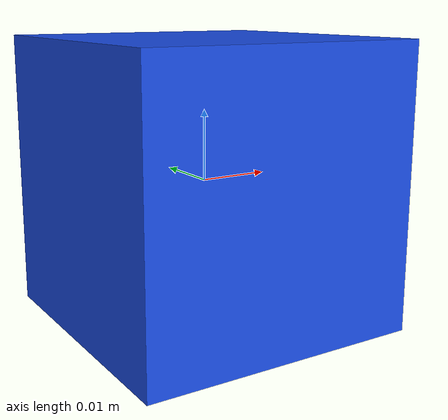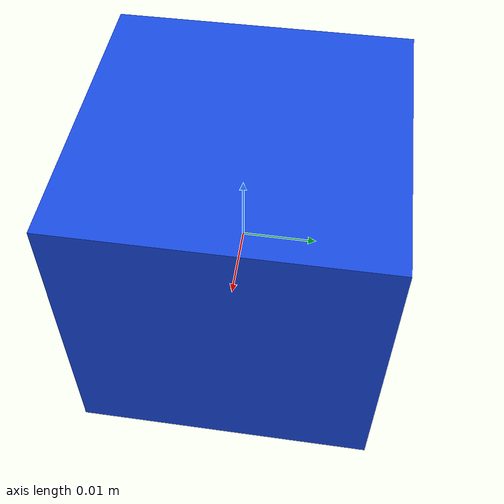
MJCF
<mujoco model="blue_cube">
  <worldbody>
    <body>
      <body name="object">
        <!-- visual -->
        <geom solimp="0.998 0.998 0.001" solref="0.001 1" density="100" friction="0.95 0.3 0.1"
              type="box" size="0.02 0.02 0.02" rgba="0.1 0.3 0.9 1" group="1"/>
        <!-- collision -->
        <geom solimp="0.998 0.998 0.001" solref="0.001 1" density="100" friction="0.95 0.3 0.1"
              type="box" size="0.02 0.02 0.02" rgba="0.1 0.3 0.9 0.3" group="0"/>
      </body>
      <site rgba="0 0 0 0" size="0.005" pos="0 0 -0.02" name="bottom_site"/>
      <site rgba="0 0 0 0" size="0.005" pos="0 0 0.02" name="top_site"/>
      <site rgba="0 0 0 0" size="0.005" pos="0.025 0.025 0" name="horizontal_radius_site"/>
    </body>
  </worldbody>
</mujoco>
